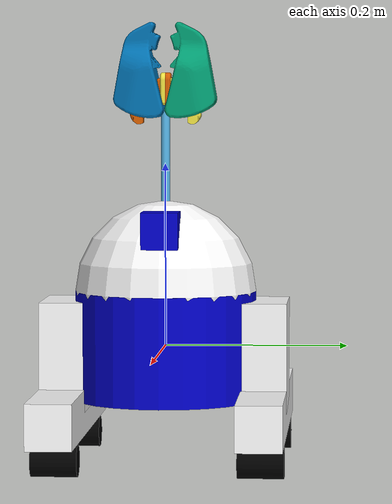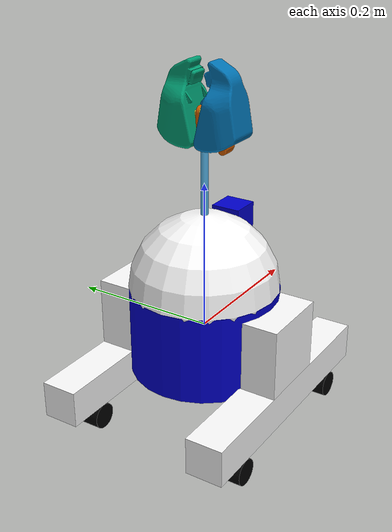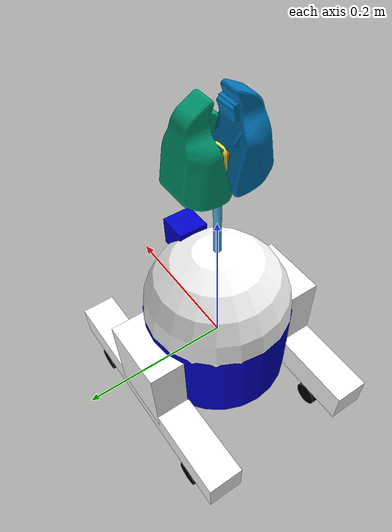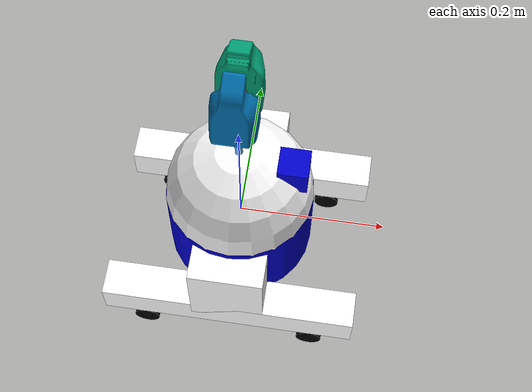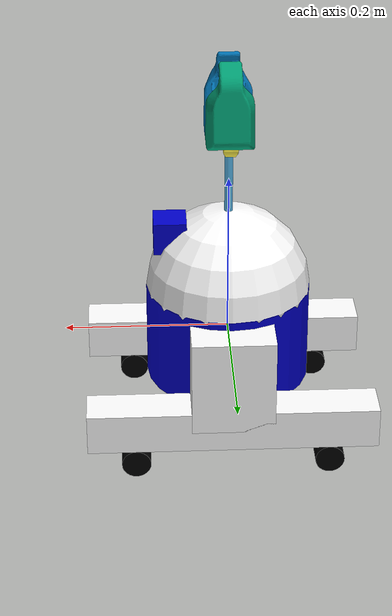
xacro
<?xml version="1.0"?>
<robot name="r3d2" xmlns:xacro="http://ros.org/wiki/xacro">

  <xacro:property name="width" value=".2" />
  <xacro:property name="leglen" value=".6" />
  <xacro:property name="polelen" value=".2" />
  <xacro:property name="bodylen" value=".6" />
  <xacro:property name="baselen" value=".4" />
  <xacro:property name="wheeldiam" value=".07" />
  <xacro:property name="pi" value="3.1415" />

  <xacro:property name="width" value=".1" />
  <xacro:property name="leglen" value=".12" />
  <xacro:property name="polelen" value=".2" />
  <xacro:property name="bodylen" value=".12" />
  <xacro:property name="baselen" value=".35" />
  <xacro:property name="wheeldiam" value=".035" />
  <xacro:property name="pi" value="3.1415" />
  <xacro:property name="robot_name" value="r3d2" />

  <material name="blue">
    <color rgba="0 0 .8 1"/>
  </material>

  <material name="black">
    <color rgba="0 0 0 1"/>
  </material>

  <material name="white">
    <color rgba="1 1 1 1"/>
  </material>

  <xacro:macro name="default_inertial" params="mass">
    <inertial>
      <mass value="${mass}" />
      <inertia ixx="0.5" ixy="0.0" ixz="0.0" iyy="0.5" iyz="0.0" izz="0.5" />
    </inertial>
  </xacro:macro>

  <link name="base_link">
    <visual>
      <geometry>
        <cylinder radius="${width}" length="${bodylen}"/>
      </geometry>
      <material name="blue"/>
    </visual>
    <collision>
      <geometry>
        <cylinder radius="${width}" length="${bodylen}"/>
      </geometry>
    </collision>
    <xacro:default_inertial mass="10"/>
  </link>

  <xacro:macro name="wheel" params="prefix suffix reflect">

    <link name="${robot_name}_${prefix}_${suffix}_wheel">
      <visual>
        <origin xyz="0 0 0" rpy="${pi/2} 0 0" />
        <geometry>
          <cylinder radius="${wheeldiam/2}" length="0.05"/>
        </geometry>
        <material name="black"/>
        <origin xyz="0 0 0" rpy="0 0 0" />
      </visual>
      <collision>
        <origin xyz="0 0 0" rpy="${pi/2} 0 0" />
        <geometry>
          <cylinder radius="${wheeldiam/2}" length="0.05"/>
        </geometry>
        <origin xyz="0 0 0" rpy="0 0 0" />
      </collision>
      <xacro:default_inertial mass="2"/>
    </link>
    <joint name="${robot_name}_${prefix}_${suffix}_wheel_joint" type="continuous">
      <axis xyz="0 0.05 0" rpy="0 0 0" />
      <parent link="${prefix}_base"/>
      <child link="${robot_name}_${prefix}_${suffix}_wheel"/>
      <origin xyz="${baselen*reflect/3} 0 -${wheeldiam/2+.025}" rpy="0 0 0"/>
    </joint>

    <!-- This block provides the simulator (Gazebo) with information on a few additional
    physical properties. See http://gazebosim.org/tutorials/?tut=ros_urdf for more-->
    <gazebo reference="${robot_name}_${prefix}_${suffix}_wheel">
      <mu1 value="200.0"/>
      <mu2 value="100.0"/>
      <kp value="10000000.0" />
      <kd value="1.0" />
      <material>Gazebo/Grey</material>
    </gazebo>

    <!-- This block connects the wheel joint to an actuator (motor), which informs both
    simulation and visualization of the robot -->
    <transmission name="${robot_name}_${prefix}_${suffix}_wheel_trans" type="SimpleTransmission">
      <type>transmission_interface/SimpleTransmission</type>
      <actuator name="${robot_name}_${prefix}_${suffix}_wheel_motor">
        <mechanicalReduction>1</mechanicalReduction>
      </actuator>
      <joint name="${robot_name}_${prefix}_${suffix}_wheel_joint">
        <hardwareInterface>VelocityJointInterface</hardwareInterface>
      </joint>
    </transmission>
  </xacro:macro>

  <xacro:macro name="leg" params="prefix reflect">
    <link name="${prefix}_leg">
      <visual>
        <geometry>
          <box size="${leglen} .05 .1"/>
        </geometry>
        <origin xyz="0 0 -${leglen/2}" rpy="0 ${pi/2} 0"/>
        <material name="white"/>
      </visual>
      <collision>
        <geometry>
          <box size="${leglen} .05 .1"/>
        </geometry>
        <origin xyz="0 0 -${leglen/2}" rpy="0 ${pi/2} 0"/>
      </collision>
      <xacro:default_inertial mass="1"/>
    </link>

    <joint name="base_to_${prefix}_leg" type="fixed">
      <parent link="base_link"/>
      <child link="${prefix}_leg"/>
      <origin xyz="0 ${reflect*(width+.01)} .05" />
    </joint>

    <link name="${prefix}_base">
      <visual>
        <geometry>
          <box size="${baselen} .05 .05"/>
        </geometry>
        <material name="white"/>
      </visual>
      <collision>
        <geometry>
          <box size="${baselen} .05 .05"/>
        </geometry>
      </collision>
      <xacro:default_inertial mass="3"/>
    </link>

    <joint name="${prefix}_base_joint" type="fixed">
      <parent link="${prefix}_leg"/>
      <child link="${prefix}_base"/>
      <origin xyz="0 0 ${-leglen}" />
    </joint>
    <xacro:wheel prefix="${prefix}" suffix="front" reflect="1"/>
    <xacro:wheel prefix="${prefix}" suffix="back" reflect="-1"/>
    <gazebo reference="${prefix}_leg">
      <material>Gazebo/White</material>
    </gazebo>
  </xacro:macro>
  <xacro:leg prefix="right" reflect="-1" />
  <xacro:leg prefix="left" reflect="1" />

  <joint name="gripper_extension" type="prismatic">
    <parent link="head"/>
    <child link="gripper_pole"/>
    <limit effort="1000.0" lower="-${width*2-.02}" upper="0" velocity="0.5"/>
    <origin rpy="0 -${pi/2} 0" xyz="0 0 0"/>
    <limit effort="30" velocity="0.2"/>
    <dynamics damping="0.0" friction="0.0"/>
  </joint>

  <link name="gripper_pole">
    <visual>
      <geometry>
        <cylinder length="${polelen}" radius=".005"/>
      </geometry>
      <origin xyz="${polelen/2} 0 0" rpy="0 ${pi/2} 0 "/>
    </visual>
    <collision>
      <geometry>
        <cylinder length="${polelen}" radius=".005"/>
      </geometry>
      <origin xyz="${polelen/2} 0 0" rpy="0 ${pi/2} 0 "/>
    </collision>
    <xacro:default_inertial mass=".05"/>
  </link>

  <transmission name="gripper_extension_trans" type="SimpleTransmission">
    <type>transmission_interface/SimpleTransmission</type>
    <actuator name="gripper_extension_motor">
      <mechanicalReduction>1</mechanicalReduction>
    </actuator>
    <joint name="gripper_extension">
      <hardwareInterface>PositionJointInterface</hardwareInterface>
    </joint>
  </transmission>

  <xacro:macro name="gripper" params="prefix reflect">
    <joint name="${prefix}_gripper_joint" type="revolute">
      <axis xyz="0 0 ${reflect}"/>
      <limit effort="1000.0" lower="0.0" upper="0.548" velocity="0.5"/>
      <origin rpy="0 0 0" xyz="${polelen} ${reflect*0.01} 0"/>
      <parent link="gripper_pole"/>
      <child link="${prefix}_gripper"/>
      <limit effort="30" velocity="1.0"/>
      <dynamics damping="0.0" friction="0.0"/>
    </joint>
    <link name="${prefix}_gripper">
      <visual>
        <origin rpy="${(reflect-1)/2*pi} 0 0" xyz="0 0 0"/>
        <geometry>
          <mesh filename="package://pr2_description/meshes/gripper_v0/l_finger.dae"/>
        </geometry>
      </visual>
      <collision>
        <geometry>
          <mesh filename="package://pr2_description/meshes/gripper_v0/l_finger.dae"/>
        </geometry>
        <origin rpy="${(reflect-1)/2*pi} 0 0" xyz="0 0 0"/>
      </collision>
      <xacro:default_inertial mass=".05"/>
    </link>
    <transmission name="${prefix}_gripper_trans" type="SimpleTransmission">
      <type>transmission_interface/SimpleTransmission</type>
      <actuator name="${prefix}_gripper_motor">
        <mechanicalReduction>1</mechanicalReduction>
      </actuator>
      <joint name="${prefix}_gripper_joint">
        <hardwareInterface>PositionJointInterface</hardwareInterface>
      </joint>
    </transmission>

    <joint name="${prefix}_tip_joint" type="fixed">
      <parent link="${prefix}_gripper"/>
      <child link="${prefix}_tip"/>
    </joint>
    <link name="${prefix}_tip">
      <visual>
        <origin rpy="${(reflect-1)/2*pi} 0 0" xyz="0.009137 0.000495 0"/>
        <geometry>
          <mesh filename="package://pr2_description/meshes/gripper_v0/l_finger_tip.dae"/>
        </geometry>
      </visual>
      <collision>
        <geometry>
          <mesh filename="package://pr2_description/meshes/gripper_v0/l_finger_tip.dae"/>
        </geometry>
        <origin rpy="${(reflect-1)/2*pi} 0 0" xyz="0.009137 0.000495 0"/>
      </collision>
      <xacro:default_inertial mass=".05"/>
    </link>
  </xacro:macro>

  <xacro:gripper prefix="left" reflect="1" />
  <xacro:gripper prefix="right" reflect="-1" />

  <link name="head">
    <visual>
      <geometry>
        <sphere radius="${width}"/>
      </geometry>
      <material name="white"/>
    </visual>
    <collision>
      <geometry>
        <sphere radius="${width}"/>
      </geometry>
    </collision>
    <xacro:default_inertial mass="2"/>
  </link>

  <joint name="head_swivel" type="continuous">
    <parent link="base_link"/>
    <child link="head"/>
    <axis xyz="0 0 1"/>
    <origin xyz="0 0 ${bodylen/2}"/>
    <limit effort="30" velocity="1.0"/>
    <dynamics damping="0.0" friction="0.0"/>
  </joint>

  <!-- This block connects the head_swivel joint to an actuator (motor), which informs both
  simulation and visualization of the robot -->
  <transmission name="head_swivel_trans" type="SimpleTransmission">
    <type>transmission_interface/SimpleTransmission</type>
    <actuator name="$head_swivel_motor">
      <mechanicalReduction>1</mechanicalReduction>
    </actuator>
    <joint name="head_swivel">
      <hardwareInterface>PositionJointInterface</hardwareInterface>
    </joint>
  </transmission>

  <link name="box">
    <visual>
      <geometry>
        <box size=".04 .04 .04"/>
      </geometry>
      <material name="blue"/>
      <origin xyz="-0.04 0 0"/>
    </visual>
    <collision>
      <geometry>
        <box size=".04 .04 .04"/>
      </geometry>
    </collision>
    <xacro:default_inertial mass="1"/>
  </link>

  <joint name="tobox" type="fixed">
    <parent link="head"/>
    <child link="box"/>
    <origin xyz="${.707*width+0.04} 0 ${.707*width}"/>
  </joint>

  <!-- Gazebo plugin for ROS Control -->
  <gazebo>
    <plugin name="gazebo_ros_control" filename="libgazebo_ros_control.so">
      <robotNamespace>/${robot_name}</robotNamespace>
    </plugin>
  </gazebo>

  <gazebo reference="box">
    <material>Gazebo/Blue</material>
  </gazebo>
  <gazebo reference="head">
    <material>Gazebo/White</material>
  </gazebo>
  <gazebo reference="box2">
    <material>Gazebo/Blue</material>
  </gazebo>
  <gazebo reference="base_link">
    <material>Gazebo/Blue</material>
  </gazebo>
  <gazebo reference="head">
    <material>Gazebo/White</material>
  </gazebo>
</robot>
